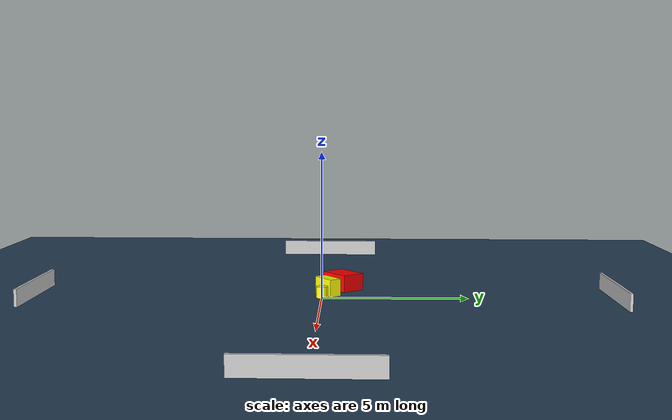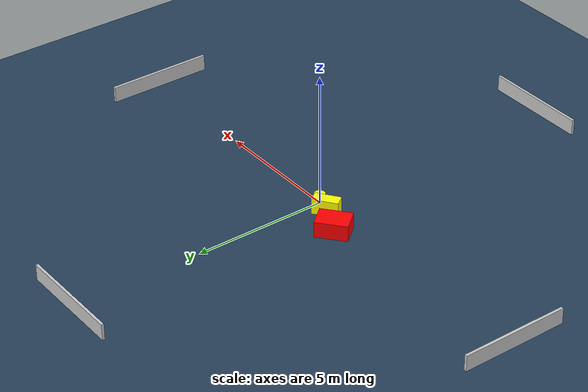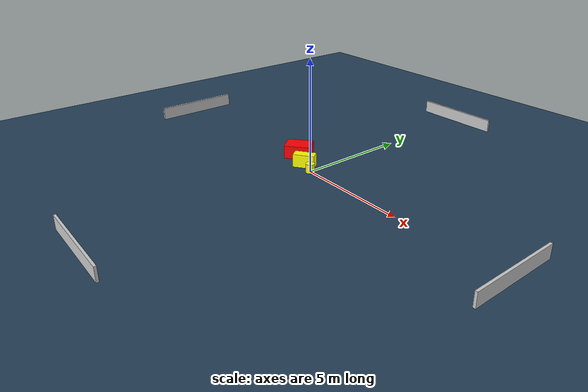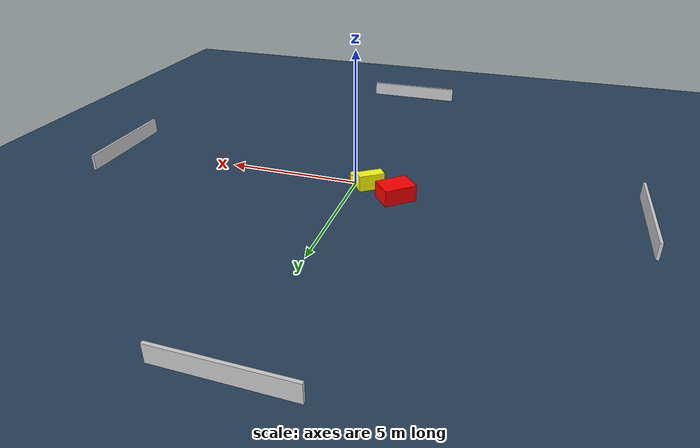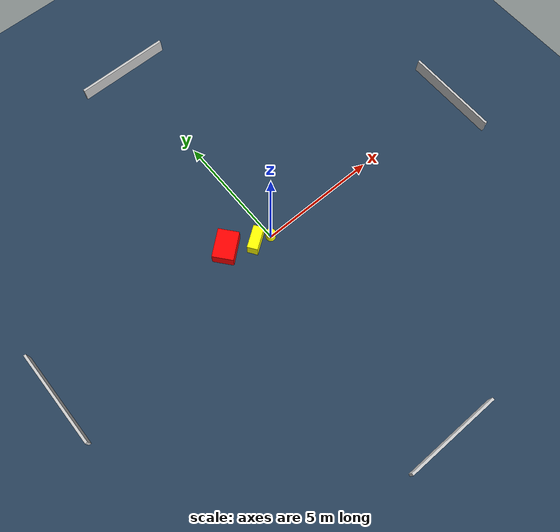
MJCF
<?xml version="1.0" ?>
<mujoco model="generated_environment">
  <option timestep="0.01" integrator="RK4" cone="elliptic"/>
  <default>
    <geom density="1"/>
  </default>
  <asset>
    <texture builtin="gradient" height="3072" name="skybox" rgb1="0.3 0.5 0.7" rgb2="0 0 0" type="skybox" width="512"/>
    <texture builtin="checker" height="300" name="groundplane" rgb1="0.2 0.3 0.4" rgb2="0.1 0.2 0.3" type="2d" width="300"/>
    <material name="groundplane" reflectance="0.2" texrepeat="5 5" texture="groundplane"/>
  </asset>
  <worldbody>
    <light dir="0 0 -1" directional="true" pos="0 0 1.5"/>
    <geom condim="3" friction="0.5 0.005 0.001" material="groundplane" name="floor" pos="0 0 0" size="0 0 0.05" type="plane"/>
    <body name="walls">
      <geom name="wall_1" condim="4" pos="-10.0 0.0 0.3" rgba="0.800000011920929 0.800000011920929 0.800000011920929 1.0" size="0.05 2.0 0.3" type="box"/>
      <geom name="wall_2" condim="4" pos="10.0 0.0 0.3" rgba="0.800000011920929 0.800000011920929 0.800000011920929 1.0" size="0.05 2.0 0.3" type="box"/>
      <geom name="wall_3" condim="4" pos="0.0 -10.0 0.3" rgba="0.800000011920929 0.800000011920929 0.800000011920929 1.0" size="2.0 0.05 0.3" type="box"/>
      <geom name="wall_4" condim="4" pos="0.0 10.0 0.3" rgba="0.800000011920929 0.800000011920929 0.800000011920929 1.0" size="2.0 0.05 0.3" type="box"/>
    </body>
    <body name="robot">
      <joint name="joint_x" type="slide" pos="0 0 0" axis="1 0 0"/>
      <joint name="joint_y" type="slide" pos="0 0 0" axis="0 1 0"/>
      <geom name="robot" type="cylinder" pos="0.0 0.0 0.2" size="0.2 0.2 0.0" mass="5.0" friction="1.0 0.005 0.0001" condim="4" rgba="1.0 1.0 0.0 1.0"/>
    </body>
    <body name="obstacle_1_movable">
      <geom name="obstacle_1_movable" condim="4" pos="-0.6148293664915566 0.1822880429469001 0.3" euler="0 0 215.0641726738772" friction="0.0 0.005 0.001" rgba="1.0 1.0 0.0 1.0" size="0.48149266127176765 0.2156928970914896 0.3" type="box" mass="0.1"/>
      <joint type="free"/>
    </body>
    <body name="obstacle_2_static">
      <geom name="obstacle_2_static" condim="4" pos="-1.6900179366273012 0.6974838884331984 0.3" euler="0 0 39.76301243204198" friction="0.0 0.005 0.001" rgba="1.0 0.0 0.0 1.0" size="0.5946827645525645 0.43273509780576147 0.3" type="box"/>
    </body>
  </worldbody>
  <actuator>
    <motor name="actuator_x" joint="joint_x" gear="1" ctrlrange="-1 1"/>
    <motor name="actuator_y" joint="joint_y" gear="1" ctrlrange="-1 1"/>
  </actuator>
</mujoco>
